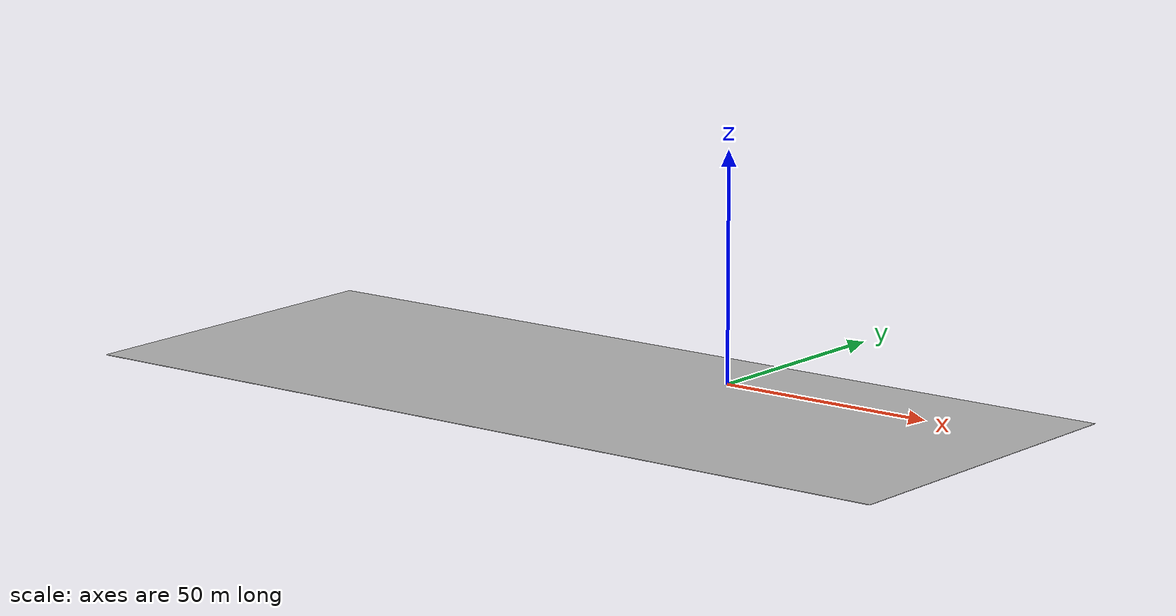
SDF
<?xml version="1.0"?>
<sdf version="1.4">
  <world name="default">

    <light name='sun' type='directional'>
      <cast_shadows>1</cast_shadows>
      <pose frame=''>0 0 10 0 -0 0</pose>
      <diffuse>0.8 0.8 0.8 1</diffuse>
      <specular>0.1 0.1 0.1 1</specular>
      <attenuation>
        <range>1000</range>
        <constant>0.9</constant>
        <linear>0.01</linear>
        <quadratic>0.001</quadratic>
      </attenuation>
      <direction>-0.5 0.5 -1</direction>
    </light>

    <scene>
      <grid>false</grid>
      <origin_visual>false</origin_visual>
      <ambient>0.592 0.624 0.635 1</ambient>
      <sky>
        <clouds>
          <speed>12</speed>
        </clouds>
      </sky>
      <background>0.35 0.35 0.35 1.0</background>
    </scene>

    <gui>
     <camera name="user_camera">
       <pose>-49.08 -1.911 6.95 0 0 -0.0159</pose>
     </camera>
    </gui>

    <model name="ground">
    	<pose>-21.3 -20.73 0 0 0 -0</pose>
  	<static>1</static>
    	<link name="ground">

        <collision name="collision">
          <geometry>
            <box>
              <size>200 80 .1</size>
            </box>
          </geometry>
          <surface>
            <contact>
              <ode/>
            </contact>
          </surface>
        </collision>

        <visual name="visual">
          <geometry>
            <box>
              <size>200 80 .1</size>
            </box>
          </geometry>
          <material>
            <script>
              <uri>file://media/materials/scripts/map.material</uri>
              <name>map/material</name>
            </script>
          </material>
        </visual>

        <self_collide>0</self_collide>
        <kinematic>0</kinematic>
        <gravity>1</gravity>

    	</link>
    </model>

    <gravity>0 0 -9.8</gravity>
    <magnetic_field>6e-06 2.3e-05 -4.2e-05</magnetic_field>
    <atmosphere type='adiabatic'/>

    <physics name='default_physics' default='0' type='ode'>
      <max_step_size>0.001</max_step_size>
      <real_time_factor>1</real_time_factor>
      <real_time_update_rate>1000</real_time_update_rate>
    </physics>

    <scene>
      <ambient>0.4 0.4 0.4 1</ambient>
      <background>0.7 0.7 0.7 1</background>
      <shadows>1</shadows>
    </scene>

    <spherical_coordinates>
      <surface_model>EARTH_WGS84</surface_model>
      <latitude_deg>0</latitude_deg>
      <longitude_deg>0</longitude_deg>
      <elevation>0</elevation>
      <heading_deg>0</heading_deg>
    </spherical_coordinates>

    <gui fullscreen='0'>
      <camera name='user_camera'>
        <pose frame=''>6.47997 224.99 361.297 0 0.986045 -2.03136</pose>
        <view_controller>orbit</view_controller>
        <projection_type>perspective</projection_type>
      </camera>
    </gui>

  </world>
</sdf>
